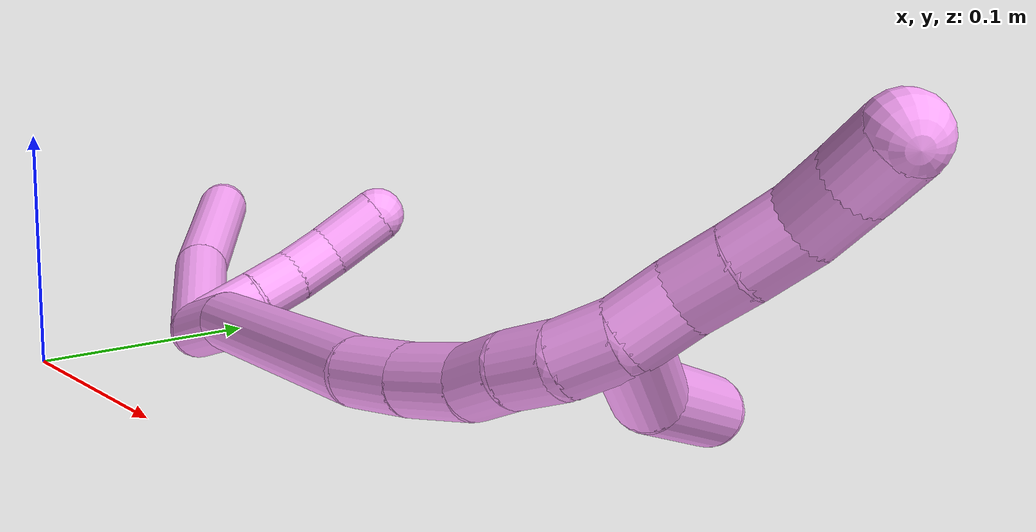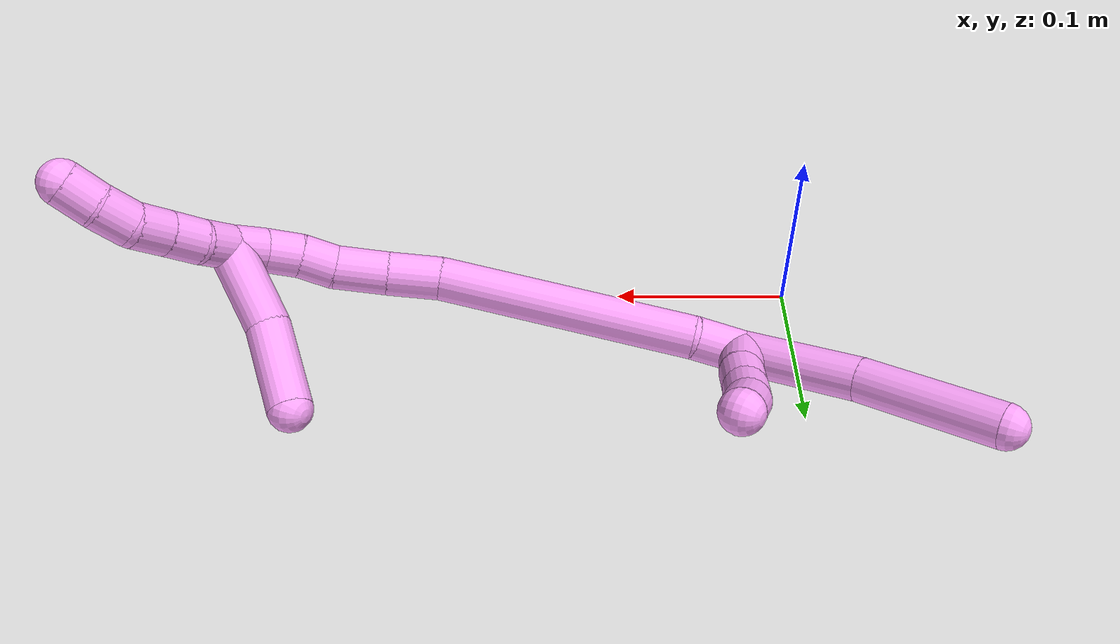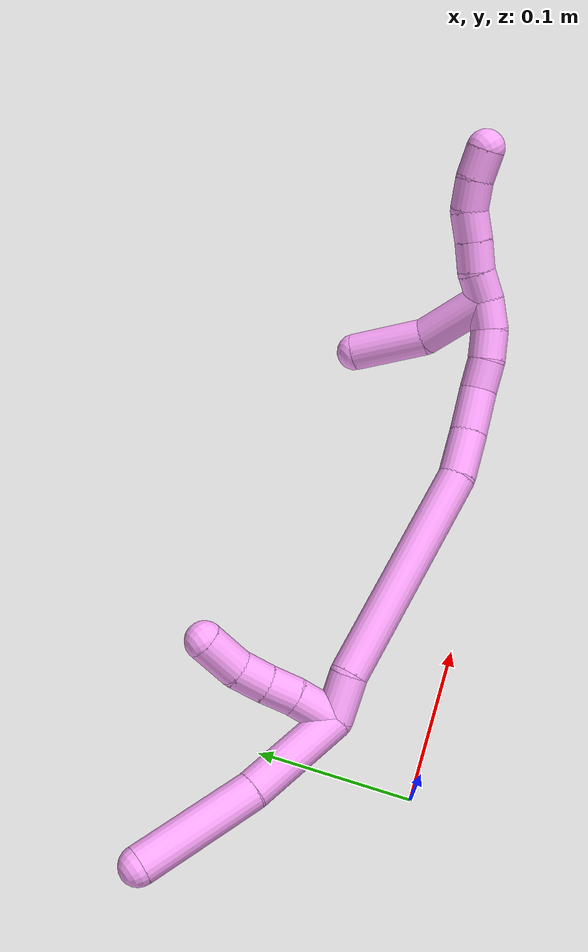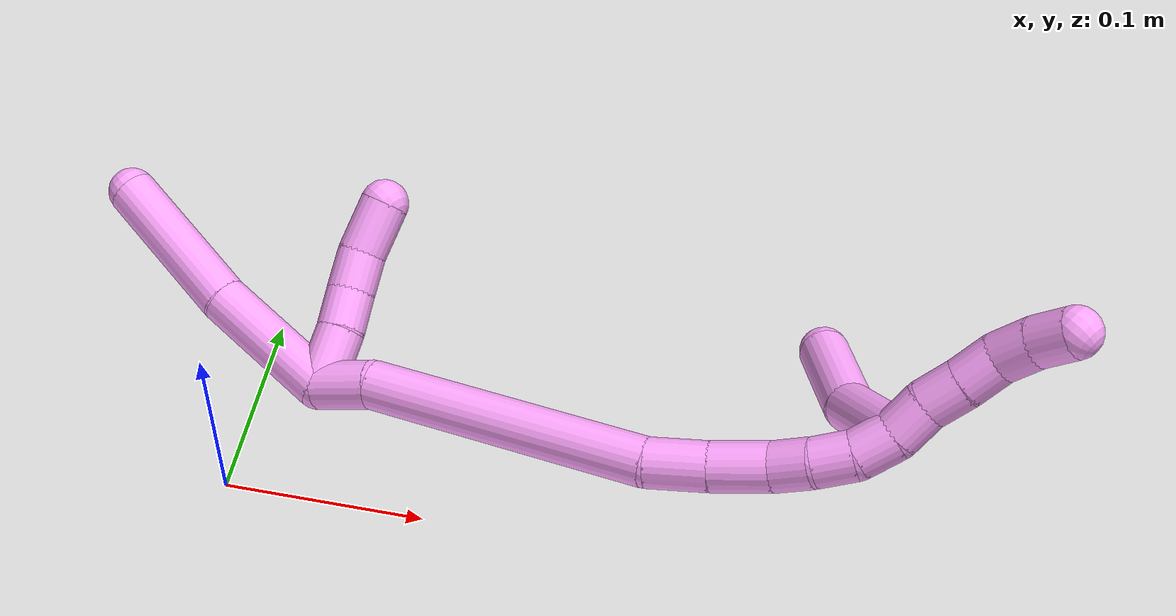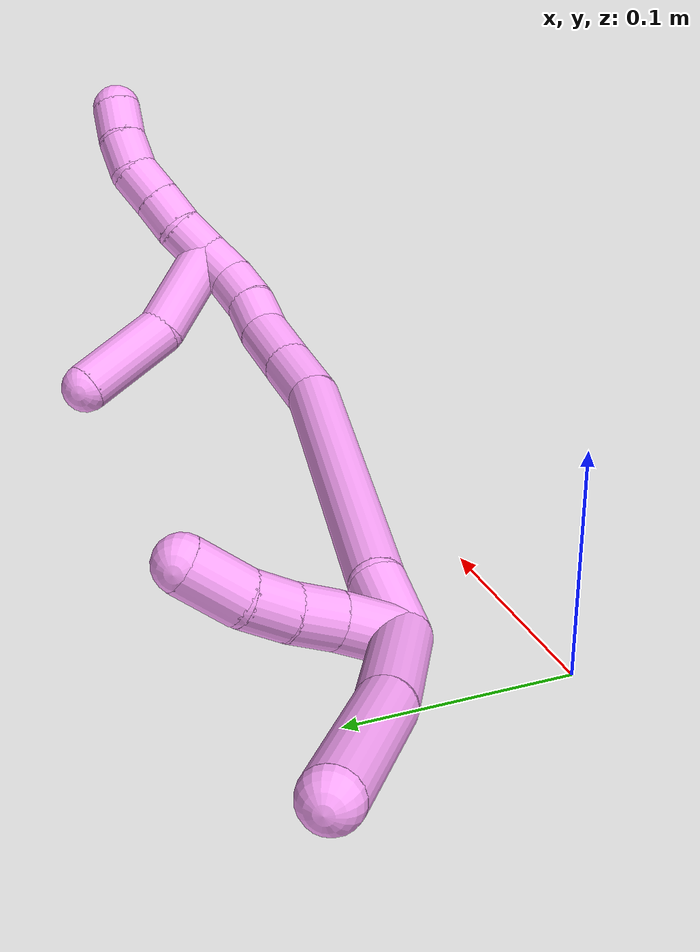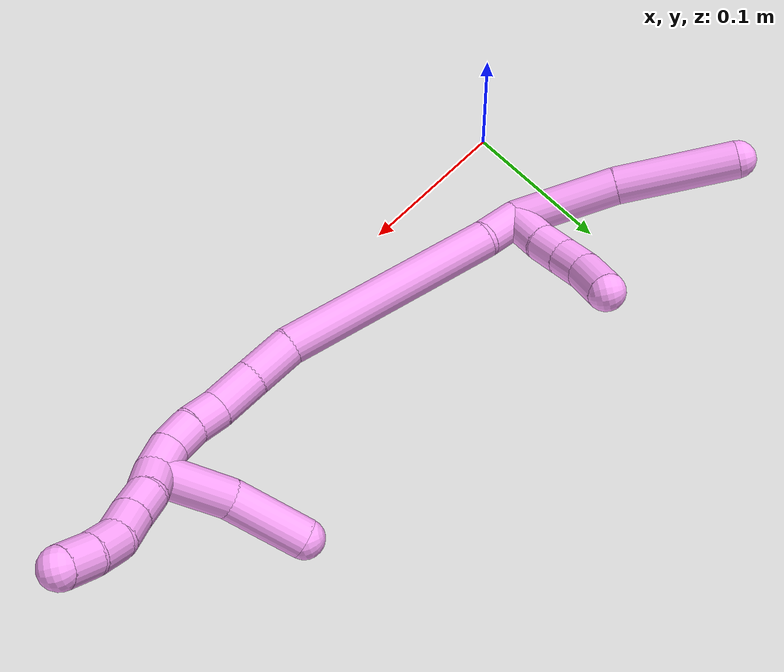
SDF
<sdf version="1.7">
 <world name="default">
  <model name="4">
   <static>0</static>
   <link name="4">
    <collision name="collision-cylinder-e_1_2_8">
     <pose>0.001126 -0.002538 0.034661 0.073081 0.032385 0.001184</pose>
     <geometry><cylinder><radius>0.0125</radius><length>0.069543</length></cylinder></geometry>
     <surface>
      <friction><ode><mu>1.16</mu><mu2>1.16</mu2><slip1>0</slip1><slip2>0</slip2></ode></friction>
      <contact><ode><kp>1e+06</kp><kd>1</kd><max_vel>0</max_vel><min_depth>0.001</min_depth></ode></contact>
     </surface>
    </collision>
    <visual name="visual-cylinder-e_1_2_8">
     <pose>0.001126 -0.002538 0.034661 0.073081 0.032385 0.001184</pose>
     <geometry><cylinder><radius>0.0125</radius><length>0.069543</length></cylinder></geometry>
     <material><ambient>1 0.65098 0.996078 1</ambient></material>
    </visual>
    <collision name="collision-cylinder-e_2_8_6">
     <pose>0.00344 -0.002896 0.109473 -0.054214 0.029532 -0.000801</pose>
     <geometry><cylinder><radius>0.0125</radius><length>0.080457</length></cylinder></geometry>
     <surface>
      <friction><ode><mu>1.16</mu><mu2>1.16</mu2><slip1>0</slip1><slip2>0</slip2></ode></friction>
      <contact><ode><kp>1e+06</kp><kd>1</kd><max_vel>0</max_vel><min_depth>0.001</min_depth></ode></contact>
     </surface>
    </collision>
    <visual name="visual-cylinder-e_2_8_6">
     <pose>0.00344 -0.002896 0.109473 -0.054214 0.029532 -0.000801</pose>
     <geometry><cylinder><radius>0.0125</radius><length>0.080457</length></cylinder></geometry>
     <material><ambient>1 0.65098 0.996078 1</ambient></material>
    </visual>
    <collision name="collision-cylinder-e_1_2_9">
     <pose>0.003513 0.012813 0.006745 -1.08628 0.238002 -0.144114</pose>
     <geometry><cylinder><radius>0.0125</radius><length>0.0298</length></cylinder></geometry>
     <surface>
      <friction><ode><mu>1.16</mu><mu2>1.16</mu2><slip1>0</slip1><slip2>0</slip2></ode></friction>
      <contact><ode><kp>1e+06</kp><kd>1</kd><max_vel>0</max_vel><min_depth>0.001</min_depth></ode></contact>
     </surface>
    </collision>
    <visual name="visual-cylinder-e_1_2_9">
     <pose>0.003513 0.012813 0.006745 -1.08628 0.238002 -0.144114</pose>
     <geometry><cylinder><radius>0.0125</radius><length>0.0298</length></cylinder></geometry>
     <material><ambient>1 0.65098 0.996078 1</ambient></material>
    </visual>
    <collision name="collision-cylinder-e_2_9_10">
     <pose>0.009143 0.034097 0.019228 -0.975338 0.204113 -0.108532</pose>
     <geometry><cylinder><radius>0.0125</radius><length>0.020895</length></cylinder></geometry>
     <surface>
      <friction><ode><mu>1.16</mu><mu2>1.16</mu2><slip1>0</slip1><slip2>0</slip2></ode></friction>
      <contact><ode><kp>1e+06</kp><kd>1</kd><max_vel>0</max_vel><min_depth>0.001</min_depth></ode></contact>
     </surface>
    </collision>
    <visual name="visual-cylinder-e_2_9_10">
     <pose>0.009143 0.034097 0.019228 -0.975338 0.204113 -0.108532</pose>
     <geometry><cylinder><radius>0.0125</radius><length>0.020895</length></cylinder></geometry>
     <material><ambient>1 0.65098 0.996078 1</ambient></material>
    </visual>
    <collision name="collision-cylinder-e_3_10_11">
     <pose>0.014461 0.051106 0.030266 -1.0153 0.308253 -0.172416</pose>
     <geometry><cylinder><radius>0.0125</radius><length>0.021095</length></cylinder></geometry>
     <surface>
      <friction><ode><mu>1.16</mu><mu2>1.16</mu2><slip1>0</slip1><slip2>0</slip2></ode></friction>
      <contact><ode><kp>1e+06</kp><kd>1</kd><max_vel>0</max_vel><min_depth>0.001</min_depth></ode></contact>
     </surface>
    </collision>
    <visual name="visual-cylinder-e_3_10_11">
     <pose>0.014461 0.051106 0.030266 -1.0153 0.308253 -0.172416</pose>
     <geometry><cylinder><radius>0.0125</radius><length>0.021095</length></cylinder></geometry>
     <material><ambient>1 0.65098 0.996078 1</ambient></material>
    </visual>
    <collision name="collision-cylinder-e_4_11_5">
     <pose>0.02378 0.07152 0.040094 -1.20652 0.448693 -0.311858</pose>
     <geometry><cylinder><radius>0.0125</radius><length>0.028209</length></cylinder></geometry>
     <surface>
      <friction><ode><mu>1.16</mu><mu2>1.16</mu2><slip1>0</slip1><slip2>0</slip2></ode></friction>
      <contact><ode><kp>1e+06</kp><kd>1</kd><max_vel>0</max_vel><min_depth>0.001</min_depth></ode></contact>
     </surface>
    </collision>
    <visual name="visual-cylinder-e_4_11_5">
     <pose>0.02378 0.07152 0.040094 -1.20652 0.448693 -0.311858</pose>
     <geometry><cylinder><radius>0.0125</radius><length>0.028209</length></cylinder></geometry>
     <material><ambient>1 0.65098 0.996078 1</ambient></material>
    </visual>
    <collision name="collision-cylinder-e_1_2_12">
     <pose>0.006181 0.008171 -0.011064 -2.50549 0.422347 -1.15433</pose>
     <geometry><cylinder><radius>0.0125</radius><length>0.030158</length></cylinder></geometry>
     <surface>
      <friction><ode><mu>1.16</mu><mu2>1.16</mu2><slip1>0</slip1><slip2>0</slip2></ode></friction>
      <contact><ode><kp>1e+06</kp><kd>1</kd><max_vel>0</max_vel><min_depth>0.001</min_depth></ode></contact>
     </surface>
    </collision>
    <visual name="visual-cylinder-e_1_2_12">
     <pose>0.006181 0.008171 -0.011064 -2.50549 0.422347 -1.15433</pose>
     <geometry><cylinder><radius>0.0125</radius><length>0.030158</length></cylinder></geometry>
     <material><ambient>1 0.65098 0.996078 1</ambient></material>
    </visual>
    <collision name="collision-cylinder-e_2_12_13">
     <pose>0.028856 0.046248 -0.087658 -2.71344 0.225107 -0.958885</pose>
     <geometry><cylinder><radius>0.0125</radius><length>0.147793</length></cylinder></geometry>
     <surface>
      <friction><ode><mu>1.16</mu><mu2>1.16</mu2><slip1>0</slip1><slip2>0</slip2></ode></friction>
      <contact><ode><kp>1e+06</kp><kd>1</kd><max_vel>0</max_vel><min_depth>0.001</min_depth></ode></contact>
     </surface>
    </collision>
    <visual name="visual-cylinder-e_2_12_13">
     <pose>0.028856 0.046248 -0.087658 -2.71344 0.225107 -0.958885</pose>
     <geometry><cylinder><radius>0.0125</radius><length>0.147793</length></cylinder></geometry>
     <material><ambient>1 0.65098 0.996078 1</ambient></material>
    </visual>
    <collision name="collision-cylinder-e_3_13_14">
     <pose>0.04863 0.085461 -0.165016 -2.47503 0.214563 -0.603182</pose>
     <geometry><cylinder><radius>0.0125</radius><length>0.030807</length></cylinder></geometry>
     <surface>
      <friction><ode><mu>1.16</mu><mu2>1.16</mu2><slip1>0</slip1><slip2>0</slip2></ode></friction>
      <contact><ode><kp>1e+06</kp><kd>1</kd><max_vel>0</max_vel><min_depth>0.001</min_depth></ode></contact>
     </surface>
    </collision>
    <visual name="visual-cylinder-e_3_13_14">
     <pose>0.04863 0.085461 -0.165016 -2.47503 0.214563 -0.603182</pose>
     <geometry><cylinder><radius>0.0125</radius><length>0.030807</length></cylinder></geometry>
     <material><ambient>1 0.65098 0.996078 1</ambient></material>
    </visual>
    <collision name="collision-cylinder-e_4_14_15">
     <pose>0.055908 0.104206 -0.187873 -2.43367 0.268756 -0.701459</pose>
     <geometry><cylinder><radius>0.0125</radius><length>0.030113</length></cylinder></geometry>
     <surface>
      <friction><ode><mu>1.16</mu><mu2>1.16</mu2><slip1>0</slip1><slip2>0</slip2></ode></friction>
      <contact><ode><kp>1e+06</kp><kd>1</kd><max_vel>0</max_vel><min_depth>0.001</min_depth></ode></contact>
     </surface>
    </collision>
    <visual name="visual-cylinder-e_4_14_15">
     <pose>0.055908 0.104206 -0.187873 -2.43367 0.268756 -0.701459</pose>
     <geometry><cylinder><radius>0.0125</radius><length>0.030113</length></cylinder></geometry>
     <material><ambient>1 0.65098 0.996078 1</ambient></material>
    </visual>
    <collision name="collision-cylinder-e_5_15_16">
     <pose>0.064788 0.119481 -0.2057 -2.43224 0.498836 -1.205</pose>
     <geometry><cylinder><radius>0.0125</radius><length>0.020408</length></cylinder></geometry>
     <surface>
      <friction><ode><mu>1.16</mu><mu2>1.16</mu2><slip1>0</slip1><slip2>0</slip2></ode></friction>
      <contact><ode><kp>1e+06</kp><kd>1</kd><max_vel>0</max_vel><min_depth>0.001</min_depth></ode></contact>
     </surface>
    </collision>
    <visual name="visual-cylinder-e_5_15_16">
     <pose>0.064788 0.119481 -0.2057 -2.43224 0.498836 -1.205</pose>
     <geometry><cylinder><radius>0.0125</radius><length>0.020408</length></cylinder></geometry>
     <material><ambient>1 0.65098 0.996078 1</ambient></material>
    </visual>
    <collision name="collision-cylinder-e_6_16_17">
     <pose>0.07355 0.132504 -0.218609 -2.27543 0.390287 -0.80798</pose>
     <geometry><cylinder><radius>0.0125</radius><length>0.020399</length></cylinder></geometry>
     <surface>
      <friction><ode><mu>1.16</mu><mu2>1.16</mu2><slip1>0</slip1><slip2>0</slip2></ode></friction>
      <contact><ode><kp>1e+06</kp><kd>1</kd><max_vel>0</max_vel><min_depth>0.001</min_depth></ode></contact>
     </surface>
    </collision>
    <visual name="visual-cylinder-e_6_16_17">
     <pose>0.07355 0.132504 -0.218609 -2.27543 0.390287 -0.80798</pose>
     <geometry><cylinder><radius>0.0125</radius><length>0.020399</length></cylinder></geometry>
     <material><ambient>1 0.65098 0.996078 1</ambient></material>
    </visual>
    <collision name="collision-cylinder-e_7_17_1">
     <pose>0.081891 0.148159 -0.22813 -1.95368 0.454475 -0.659797</pose>
     <geometry><cylinder><radius>0.0125</radius><length>0.020322</length></cylinder></geometry>
     <surface>
      <friction><ode><mu>1.16</mu><mu2>1.16</mu2><slip1>0</slip1><slip2>0</slip2></ode></friction>
      <contact><ode><kp>1e+06</kp><kd>1</kd><max_vel>0</max_vel><min_depth>0.001</min_depth></ode></contact>
     </surface>
    </collision>
    <visual name="visual-cylinder-e_7_17_1">
     <pose>0.081891 0.148159 -0.22813 -1.95368 0.454475 -0.659797</pose>
     <geometry><cylinder><radius>0.0125</radius><length>0.020322</length></cylinder></geometry>
     <material><ambient>1 0.65098 0.996078 1</ambient></material>
    </visual>
    <collision name="collision-cylinder-e_1_1_18">
     <pose>0.091968 0.164862 -0.232338 -1.66734 0.596411 -0.652924</pose>
     <geometry><cylinder><radius>0.0125</radius><length>0.02</length></cylinder></geometry>
     <surface>
      <friction><ode><mu>1.16</mu><mu2>1.16</mu2><slip1>0</slip1><slip2>0</slip2></ode></friction>
      <contact><ode><kp>1e+06</kp><kd>1</kd><max_vel>0</max_vel><min_depth>0.001</min_depth></ode></contact>
     </surface>
    </collision>
    <visual name="visual-cylinder-e_1_1_18">
     <pose>0.091968 0.164862 -0.232338 -1.66734 0.596411 -0.652924</pose>
     <geometry><cylinder><radius>0.0125</radius><length>0.02</length></cylinder></geometry>
     <material><ambient>1 0.65098 0.996078 1</ambient></material>
    </visual>
    <collision name="collision-cylinder-e_2_18_19">
     <pose>0.103276 0.180713 -0.236235 -1.95729 0.605451 -0.869369</pose>
     <geometry><cylinder><radius>0.0125</radius><length>0.02</length></cylinder></geometry>
     <surface>
      <friction><ode><mu>1.16</mu><mu2>1.16</mu2><slip1>0</slip1><slip2>0</slip2></ode></friction>
      <contact><ode><kp>1e+06</kp><kd>1</kd><max_vel>0</max_vel><min_depth>0.001</min_depth></ode></contact>
     </surface>
    </collision>
    <visual name="visual-cylinder-e_2_18_19">
     <pose>0.103276 0.180713 -0.236235 -1.95729 0.605451 -0.869369</pose>
     <geometry><cylinder><radius>0.0125</radius><length>0.02</length></cylinder></geometry>
     <material><ambient>1 0.65098 0.996078 1</ambient></material>
    </visual>
    <collision name="collision-cylinder-e_3_19_20">
     <pose>0.114769 0.196139 -0.24165 -1.85902 0.618858 -0.809214</pose>
     <geometry><cylinder><radius>0.0125</radius><length>0.02</length></cylinder></geometry>
     <surface>
      <friction><ode><mu>1.16</mu><mu2>1.16</mu2><slip1>0</slip1><slip2>0</slip2></ode></friction>
      <contact><ode><kp>1e+06</kp><kd>1</kd><max_vel>0</max_vel><min_depth>0.001</min_depth></ode></contact>
     </surface>
    </collision>
    <visual name="visual-cylinder-e_3_19_20">
     <pose>0.114769 0.196139 -0.24165 -1.85902 0.618858 -0.809214</pose>
     <geometry><cylinder><radius>0.0125</radius><length>0.02</length></cylinder></geometry>
     <material><ambient>1 0.65098 0.996078 1</ambient></material>
    </visual>
    <collision name="collision-cylinder-e_4_20_21">
     <pose>0.127697 0.209423 -0.24835 -2.24605 0.793363 -1.43439</pose>
     <geometry><cylinder><radius>0.0125</radius><length>0.02</length></cylinder></geometry>
     <surface>
      <friction><ode><mu>1.16</mu><mu2>1.16</mu2><slip1>0</slip1><slip2>0</slip2></ode></friction>
      <contact><ode><kp>1e+06</kp><kd>1</kd><max_vel>0</max_vel><min_depth>0.001</min_depth></ode></contact>
     </surface>
    </collision>
    <visual name="visual-cylinder-e_4_20_21">
     <pose>0.127697 0.209423 -0.24835 -2.24605 0.793363 -1.43439</pose>
     <geometry><cylinder><radius>0.0125</radius><length>0.02</length></cylinder></geometry>
     <material><ambient>1 0.65098 0.996078 1</ambient></material>
    </visual>
    <collision name="collision-cylinder-e_5_21_4">
     <pose>0.141958 0.219164 -0.258295 -2.48721 0.794262 -1.78095</pose>
     <geometry><cylinder><radius>0.0125</radius><length>0.02</length></cylinder></geometry>
     <surface>
      <friction><ode><mu>1.16</mu><mu2>1.16</mu2><slip1>0</slip1><slip2>0</slip2></ode></friction>
      <contact><ode><kp>1e+06</kp><kd>1</kd><max_vel>0</max_vel><min_depth>0.001</min_depth></ode></contact>
     </surface>
    </collision>
    <visual name="visual-cylinder-e_5_21_4">
     <pose>0.141958 0.219164 -0.258295 -2.48721 0.794262 -1.78095</pose>
     <geometry><cylinder><radius>0.0125</radius><length>0.02</length></cylinder></geometry>
     <material><ambient>1 0.65098 0.996078 1</ambient></material>
    </visual>
    <collision name="collision-cylinder-e_1_1_22">
     <pose>0.06849 0.162154 -0.215555 -0.332882 -0.812642 0.144314</pose>
     <geometry><cylinder><radius>0.0125</radius><length>0.049199</length></cylinder></geometry>
     <surface>
      <friction><ode><mu>1.16</mu><mu2>1.16</mu2><slip1>0</slip1><slip2>0</slip2></ode></friction>
      <contact><ode><kp>1e+06</kp><kd>1</kd><max_vel>0</max_vel><min_depth>0.001</min_depth></ode></contact>
     </surface>
    </collision>
    <visual name="visual-cylinder-e_1_1_22">
     <pose>0.06849 0.162154 -0.215555 -0.332882 -0.812642 0.144314</pose>
     <geometry><cylinder><radius>0.0125</radius><length>0.049199</length></cylinder></geometry>
     <material><ambient>1 0.65098 0.996078 1</ambient></material>
    </visual>
    <collision name="collision-cylinder-e_2_22_3">
     <pose>0.037451 0.180301 -0.181897 -0.620105 -0.54541 0.178729</pose>
     <geometry><cylinder><radius>0.0125</radius><length>0.050801</length></cylinder></geometry>
     <surface>
      <friction><ode><mu>1.16</mu><mu2>1.16</mu2><slip1>0</slip1><slip2>0</slip2></ode></friction>
      <contact><ode><kp>1e+06</kp><kd>1</kd><max_vel>0</max_vel><min_depth>0.001</min_depth></ode></contact>
     </surface>
    </collision>
    <visual name="visual-cylinder-e_2_22_3">
     <pose>0.037451 0.180301 -0.181897 -0.620105 -0.54541 0.178729</pose>
     <geometry><cylinder><radius>0.0125</radius><length>0.050801</length></cylinder></geometry>
     <material><ambient>1 0.65098 0.996078 1</ambient></material>
    </visual>
    <collision name="collision-sphere-3">
     <pose>0.024274 0.19292 -0.164225 0 -0 0</pose>
     <geometry><sphere><radius>0.0125</radius></sphere></geometry>
     <surface>
      <friction><ode><mu>1.16</mu><mu2>1.16</mu2><slip1>0</slip1><slip2>0</slip2></ode></friction>
      <contact><ode><kp>1e+06</kp><kd>1</kd><max_vel>0</max_vel><min_depth>0.001</min_depth></ode></contact>
     </surface>
    </collision>
    <visual name="visual-sphere-3">
     <pose>0.024274 0.19292 -0.164225 0 -0 0</pose>
     <geometry><sphere><radius>0.0125</radius></sphere></geometry>
     <material><ambient>1 0.65098 0.996078 1</ambient></material>
    </visual>
    <collision name="collision-sphere-22">
     <pose>0.050628 0.167682 -0.199569 0 -0 0</pose>
     <geometry><sphere><radius>0.0125</radius></sphere></geometry>
     <surface>
      <friction><ode><mu>1.16</mu><mu2>1.16</mu2><slip1>0</slip1><slip2>0</slip2></ode></friction>
      <contact><ode><kp>1e+06</kp><kd>1</kd><max_vel>0</max_vel><min_depth>0.001</min_depth></ode></contact>
     </surface>
    </collision>
    <visual name="visual-sphere-22">
     <pose>0.050628 0.167682 -0.199569 0 -0 0</pose>
     <geometry><sphere><radius>0.0125</radius></sphere></geometry>
     <material><ambient>1 0.65098 0.996078 1</ambient></material>
    </visual>
    <collision name="collision-sphere-4">
     <pose>0.149091 0.22343 -0.263856 0 -0 0</pose>
     <geometry><sphere><radius>0.0125</radius></sphere></geometry>
     <surface>
      <friction><ode><mu>1.16</mu><mu2>1.16</mu2><slip1>0</slip1><slip2>0</slip2></ode></friction>
      <contact><ode><kp>1e+06</kp><kd>1</kd><max_vel>0</max_vel><min_depth>0.001</min_depth></ode></contact>
     </surface>
    </collision>
    <visual name="visual-sphere-4">
     <pose>0.149091 0.22343 -0.263856 0 -0 0</pose>
     <geometry><sphere><radius>0.0125</radius></sphere></geometry>
     <material><ambient>1 0.65098 0.996078 1</ambient></material>
    </visual>
    <collision name="collision-sphere-21">
     <pose>0.134824 0.214899 -0.252735 0 -0 0</pose>
     <geometry><sphere><radius>0.0125</radius></sphere></geometry>
     <surface>
      <friction><ode><mu>1.16</mu><mu2>1.16</mu2><slip1>0</slip1><slip2>0</slip2></ode></friction>
      <contact><ode><kp>1e+06</kp><kd>1</kd><max_vel>0</max_vel><min_depth>0.001</min_depth></ode></contact>
     </surface>
    </collision>
    <visual name="visual-sphere-21">
     <pose>0.134824 0.214899 -0.252735 0 -0 0</pose>
     <geometry><sphere><radius>0.0125</radius></sphere></geometry>
     <material><ambient>1 0.65098 0.996078 1</ambient></material>
    </visual>
    <collision name="collision-sphere-20">
     <pose>0.12057 0.203948 -0.243965 0 -0 0</pose>
     <geometry><sphere><radius>0.0125</radius></sphere></geometry>
     <surface>
      <friction><ode><mu>1.16</mu><mu2>1.16</mu2><slip1>0</slip1><slip2>0</slip2></ode></friction>
      <contact><ode><kp>1e+06</kp><kd>1</kd><max_vel>0</max_vel><min_depth>0.001</min_depth></ode></contact>
     </surface>
    </collision>
    <visual name="visual-sphere-20">
     <pose>0.12057 0.203948 -0.243965 0 -0 0</pose>
     <geometry><sphere><radius>0.0125</radius></sphere></geometry>
     <material><ambient>1 0.65098 0.996078 1</ambient></material>
    </visual>
    <collision name="collision-sphere-11">
     <pose>0.017661 0.059645 0.035566 0 -0 0</pose>
     <geometry><sphere><radius>0.0125</radius></sphere></geometry>
     <surface>
      <friction><ode><mu>1.16</mu><mu2>1.16</mu2><slip1>0</slip1><slip2>0</slip2></ode></friction>
      <contact><ode><kp>1e+06</kp><kd>1</kd><max_vel>0</max_vel><min_depth>0.001</min_depth></ode></contact>
     </surface>
    </collision>
    <visual name="visual-sphere-11">
     <pose>0.017661 0.059645 0.035566 0 -0 0</pose>
     <geometry><sphere><radius>0.0125</radius></sphere></geometry>
     <material><ambient>1 0.65098 0.996078 1</ambient></material>
    </visual>
    <collision name="collision-sphere-10">
     <pose>0.011261 0.042567 0.024966 0 -0 0</pose>
     <geometry><sphere><radius>0.0125</radius></sphere></geometry>
     <surface>
      <friction><ode><mu>1.16</mu><mu2>1.16</mu2><slip1>0</slip1><slip2>0</slip2></ode></friction>
      <contact><ode><kp>1e+06</kp><kd>1</kd><max_vel>0</max_vel><min_depth>0.001</min_depth></ode></contact>
     </surface>
    </collision>
    <visual name="visual-sphere-10">
     <pose>0.011261 0.042567 0.024966 0 -0 0</pose>
     <geometry><sphere><radius>0.0125</radius></sphere></geometry>
     <material><ambient>1 0.65098 0.996078 1</ambient></material>
    </visual>
    <collision name="collision-sphere-6">
     <pose>0.004627 -0.000717 0.149625 0 -0 0</pose>
     <geometry><sphere><radius>0.0125</radius></sphere></geometry>
     <surface>
      <friction><ode><mu>1.16</mu><mu2>1.16</mu2><slip1>0</slip1><slip2>0</slip2></ode></friction>
      <contact><ode><kp>1e+06</kp><kd>1</kd><max_vel>0</max_vel><min_depth>0.001</min_depth></ode></contact>
     </surface>
    </collision>
    <visual name="visual-sphere-6">
     <pose>0.004627 -0.000717 0.149625 0 -0 0</pose>
     <geometry><sphere><radius>0.0125</radius></sphere></geometry>
     <material><ambient>1 0.65098 0.996078 1</ambient></material>
    </visual>
    <collision name="collision-sphere-9">
     <pose>0.007026 0.025627 0.013489 0 -0 0</pose>
     <geometry><sphere><radius>0.0125</radius></sphere></geometry>
     <surface>
      <friction><ode><mu>1.16</mu><mu2>1.16</mu2><slip1>0</slip1><slip2>0</slip2></ode></friction>
      <contact><ode><kp>1e+06</kp><kd>1</kd><max_vel>0</max_vel><min_depth>0.001</min_depth></ode></contact>
     </surface>
    </collision>
    <visual name="visual-sphere-9">
     <pose>0.007026 0.025627 0.013489 0 -0 0</pose>
     <geometry><sphere><radius>0.0125</radius></sphere></geometry>
     <material><ambient>1 0.65098 0.996078 1</ambient></material>
    </visual>
    <collision name="collision-sphere-2">
     <geometry><sphere><radius>0.0125</radius></sphere></geometry>
     <surface>
      <friction><ode><mu>1.16</mu><mu2>1.16</mu2><slip1>0</slip1><slip2>0</slip2></ode></friction>
      <contact><ode><kp>1e+06</kp><kd>1</kd><max_vel>0</max_vel><min_depth>0.001</min_depth></ode></contact>
     </surface>
    </collision>
    <visual name="visual-sphere-2">
     <geometry><sphere><radius>0.0125</radius></sphere></geometry>
     <material><ambient>1 0.65098 0.996078 1</ambient></material>
    </visual>
    <collision name="collision-sphere-19">
     <pose>0.108968 0.188329 -0.239335 0 -0 0</pose>
     <geometry><sphere><radius>0.0125</radius></sphere></geometry>
     <surface>
      <friction><ode><mu>1.16</mu><mu2>1.16</mu2><slip1>0</slip1><slip2>0</slip2></ode></friction>
      <contact><ode><kp>1e+06</kp><kd>1</kd><max_vel>0</max_vel><min_depth>0.001</min_depth></ode></contact>
     </surface>
    </collision>
    <visual name="visual-sphere-19">
     <pose>0.108968 0.188329 -0.239335 0 -0 0</pose>
     <geometry><sphere><radius>0.0125</radius></sphere></geometry>
     <material><ambient>1 0.65098 0.996078 1</ambient></material>
    </visual>
    <collision name="collision-sphere-8">
     <pose>0.002252 -0.005075 0.069321 0 -0 0</pose>
     <geometry><sphere><radius>0.0125</radius></sphere></geometry>
     <surface>
      <friction><ode><mu>1.16</mu><mu2>1.16</mu2><slip1>0</slip1><slip2>0</slip2></ode></friction>
      <contact><ode><kp>1e+06</kp><kd>1</kd><max_vel>0</max_vel><min_depth>0.001</min_depth></ode></contact>
     </surface>
    </collision>
    <visual name="visual-sphere-8">
     <pose>0.002252 -0.005075 0.069321 0 -0 0</pose>
     <geometry><sphere><radius>0.0125</radius></sphere></geometry>
     <material><ambient>1 0.65098 0.996078 1</ambient></material>
    </visual>
    <collision name="collision-sphere-5">
     <pose>0.029898 0.083394 0.044622 0 -0 0</pose>
     <geometry><sphere><radius>0.0125</radius></sphere></geometry>
     <surface>
      <friction><ode><mu>1.16</mu><mu2>1.16</mu2><slip1>0</slip1><slip2>0</slip2></ode></friction>
      <contact><ode><kp>1e+06</kp><kd>1</kd><max_vel>0</max_vel><min_depth>0.001</min_depth></ode></contact>
     </surface>
    </collision>
    <visual name="visual-sphere-5">
     <pose>0.029898 0.083394 0.044622 0 -0 0</pose>
     <geometry><sphere><radius>0.0125</radius></sphere></geometry>
     <material><ambient>1 0.65098 0.996078 1</ambient></material>
    </visual>
    <collision name="collision-sphere-12">
     <pose>0.012362 0.016341 -0.022128 0 -0 0</pose>
     <geometry><sphere><radius>0.0125</radius></sphere></geometry>
     <surface>
      <friction><ode><mu>1.16</mu><mu2>1.16</mu2><slip1>0</slip1><slip2>0</slip2></ode></friction>
      <contact><ode><kp>1e+06</kp><kd>1</kd><max_vel>0</max_vel><min_depth>0.001</min_depth></ode></contact>
     </surface>
    </collision>
    <visual name="visual-sphere-12">
     <pose>0.012362 0.016341 -0.022128 0 -0 0</pose>
     <geometry><sphere><radius>0.0125</radius></sphere></geometry>
     <material><ambient>1 0.65098 0.996078 1</ambient></material>
    </visual>
    <collision name="collision-sphere-13">
     <pose>0.045351 0.076156 -0.153188 0 -0 0</pose>
     <geometry><sphere><radius>0.0125</radius></sphere></geometry>
     <surface>
      <friction><ode><mu>1.16</mu><mu2>1.16</mu2><slip1>0</slip1><slip2>0</slip2></ode></friction>
      <contact><ode><kp>1e+06</kp><kd>1</kd><max_vel>0</max_vel><min_depth>0.001</min_depth></ode></contact>
     </surface>
    </collision>
    <visual name="visual-sphere-13">
     <pose>0.045351 0.076156 -0.153188 0 -0 0</pose>
     <geometry><sphere><radius>0.0125</radius></sphere></geometry>
     <material><ambient>1 0.65098 0.996078 1</ambient></material>
    </visual>
    <collision name="collision-sphere-14">
     <pose>0.05191 0.094767 -0.176845 0 -0 0</pose>
     <geometry><sphere><radius>0.0125</radius></sphere></geometry>
     <surface>
      <friction><ode><mu>1.16</mu><mu2>1.16</mu2><slip1>0</slip1><slip2>0</slip2></ode></friction>
      <contact><ode><kp>1e+06</kp><kd>1</kd><max_vel>0</max_vel><min_depth>0.001</min_depth></ode></contact>
     </surface>
    </collision>
    <visual name="visual-sphere-14">
     <pose>0.05191 0.094767 -0.176845 0 -0 0</pose>
     <geometry><sphere><radius>0.0125</radius></sphere></geometry>
     <material><ambient>1 0.65098 0.996078 1</ambient></material>
    </visual>
    <collision name="collision-sphere-15">
     <pose>0.059906 0.113645 -0.198901 0 -0 0</pose>
     <geometry><sphere><radius>0.0125</radius></sphere></geometry>
     <surface>
      <friction><ode><mu>1.16</mu><mu2>1.16</mu2><slip1>0</slip1><slip2>0</slip2></ode></friction>
      <contact><ode><kp>1e+06</kp><kd>1</kd><max_vel>0</max_vel><min_depth>0.001</min_depth></ode></contact>
     </surface>
    </collision>
    <visual name="visual-sphere-15">
     <pose>0.059906 0.113645 -0.198901 0 -0 0</pose>
     <geometry><sphere><radius>0.0125</radius></sphere></geometry>
     <material><ambient>1 0.65098 0.996078 1</ambient></material>
    </visual>
    <collision name="collision-sphere-16">
     <pose>0.069669 0.125318 -0.212499 0 -0 0</pose>
     <geometry><sphere><radius>0.0125</radius></sphere></geometry>
     <surface>
      <friction><ode><mu>1.16</mu><mu2>1.16</mu2><slip1>0</slip1><slip2>0</slip2></ode></friction>
      <contact><ode><kp>1e+06</kp><kd>1</kd><max_vel>0</max_vel><min_depth>0.001</min_depth></ode></contact>
     </surface>
    </collision>
    <visual name="visual-sphere-16">
     <pose>0.069669 0.125318 -0.212499 0 -0 0</pose>
     <geometry><sphere><radius>0.0125</radius></sphere></geometry>
     <material><ambient>1 0.65098 0.996078 1</ambient></material>
    </visual>
    <collision name="collision-sphere-17">
     <pose>0.07743 0.13969 -0.224719 0 -0 0</pose>
     <geometry><sphere><radius>0.0125</radius></sphere></geometry>
     <surface>
      <friction><ode><mu>1.16</mu><mu2>1.16</mu2><slip1>0</slip1><slip2>0</slip2></ode></friction>
      <contact><ode><kp>1e+06</kp><kd>1</kd><max_vel>0</max_vel><min_depth>0.001</min_depth></ode></contact>
     </surface>
    </collision>
    <visual name="visual-sphere-17">
     <pose>0.07743 0.13969 -0.224719 0 -0 0</pose>
     <geometry><sphere><radius>0.0125</radius></sphere></geometry>
     <material><ambient>1 0.65098 0.996078 1</ambient></material>
    </visual>
    <collision name="collision-sphere-1">
     <pose>0.086352 0.156627 -0.231541 0 -0 0</pose>
     <geometry><sphere><radius>0.0125</radius></sphere></geometry>
     <surface>
      <friction><ode><mu>1.16</mu><mu2>1.16</mu2><slip1>0</slip1><slip2>0</slip2></ode></friction>
      <contact><ode><kp>1e+06</kp><kd>1</kd><max_vel>0</max_vel><min_depth>0.001</min_depth></ode></contact>
     </surface>
    </collision>
    <visual name="visual-sphere-1">
     <pose>0.086352 0.156627 -0.231541 0 -0 0</pose>
     <geometry><sphere><radius>0.0125</radius></sphere></geometry>
     <material><ambient>1 0.65098 0.996078 1</ambient></material>
    </visual>
    <collision name="collision-sphere-18">
     <pose>0.097585 0.173097 -0.233136 0 -0 0</pose>
     <geometry><sphere><radius>0.0125</radius></sphere></geometry>
     <surface>
      <friction><ode><mu>1.16</mu><mu2>1.16</mu2><slip1>0</slip1><slip2>0</slip2></ode></friction>
      <contact><ode><kp>1e+06</kp><kd>1</kd><max_vel>0</max_vel><min_depth>0.001</min_depth></ode></contact>
     </surface>
    </collision>
    <visual name="visual-sphere-18">
     <pose>0.097585 0.173097 -0.233136 0 -0 0</pose>
     <geometry><sphere><radius>0.0125</radius></sphere></geometry>
     <material><ambient>1 0.65098 0.996078 1</ambient></material>
    </visual>
    <inertial>
     <pose>0.040816 0.081771 -0.090555 0 -0 0</pose>
     <mass>0.75</mass>
     <inertia>
      <ixx>4.8e-05</ixx>
      <ixy>0</ixy>
      <ixz>0</ixz>
      <iyy>-0.000226</iyy>
      <iyz>0</iyz>
      <izz>-0.000204</izz>
     </inertia>
    </inertial>
   </link>
   <pose>0.032323 0.060104 0.012378 0.53109 -1.37931 -1.14121</pose>
  </model>
 </world>
</sdf>
